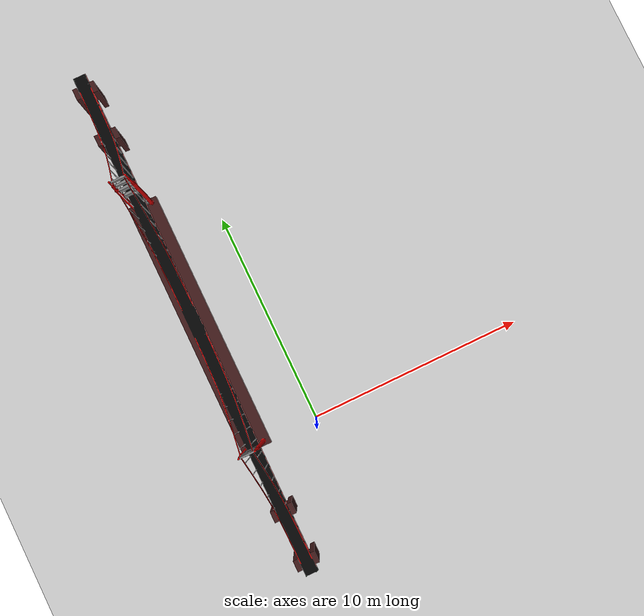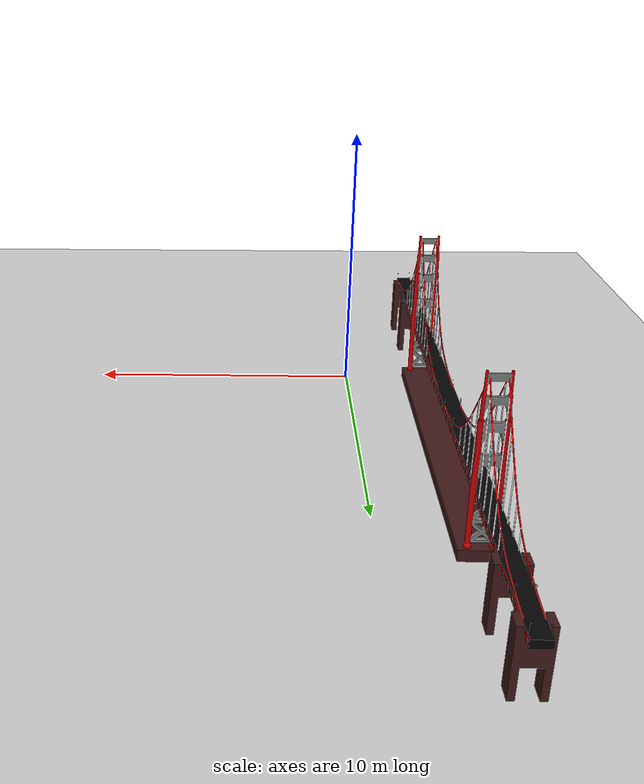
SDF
<sdf version="1.6">
 <world name="default">
  <model name="ground_concrete">
   <static>1</static>
   <link name="link">
    <collision name="collision">
     <geometry><plane><normal>0 0 1</normal><size>100 100</size></plane></geometry>
     <surface><friction><ode><mu>100</mu><mu2>50</mu2></ode></friction></surface>
    </collision>
    <visual name="visual">
     <cast_shadows>0</cast_shadows>
     <geometry><plane><normal>0 0 1</normal><size>100 100</size></plane></geometry>
     <material>
      <script>
       <uri>model://ground_concrete/materials/scripts</uri>
       <uri>model://ground_concrete/materials/textures/</uri>
       <name>MyGroundPlane/Image</name>
      </script>
     </material>
    </visual>
   </link>
   <pose>-0.004927 0.020491 0 0 -0 0</pose>
  </model>
  <light name="sun" type="directional">
   <cast_shadows>0</cast_shadows>
   <pose>0 0 10 0 -0 0</pose>
   <diffuse>0.8 0.8 0.8 1</diffuse>
   <specular>0.2 0.2 0.2 1</specular>
   <attenuation>
    <range>1000</range>
    <constant>0.9</constant>
    <linear>0.01</linear>
    <quadratic>0.001</quadratic>
   </attenuation>
   <direction>-0.5 0.1 -0.9</direction>
  </light>
  <plugin name="ros_interface_plugin" filename="librotors_gazebo_ros_interface_plugin.so"/>
  <spherical_coordinates>
   <surface_model>EARTH_WGS84</surface_model>
   <latitude_deg>47.3667</latitude_deg>
   <longitude_deg>8.55</longitude_deg>
   <elevation>500</elevation>
   <heading_deg>0</heading_deg>
  </spherical_coordinates>
  <physics name="default_physics" default="0" type="ode">
   <ode>
    <solver>
     <type>quick</type>
     <iters>1000</iters>
     <sor>1.3</sor>
     <use_dynamic_moi_rescaling>0</use_dynamic_moi_rescaling>
    </solver>
    <constraints>
     <cfm>0</cfm>
     <erp>0.2</erp>
     <contact_max_correcting_vel>100</contact_max_correcting_vel>
     <contact_surface_layer>0.001</contact_surface_layer>
    </constraints>
   </ode>
   <max_step_size>0.01</max_step_size>
   <real_time_factor>1</real_time_factor>
   <real_time_update_rate>100</real_time_update_rate>
  </physics>
  <gravity>0 0 -9.8</gravity>
  <magnetic_field>6e-06 2.3e-05 -4.2e-05</magnetic_field>
  <atmosphere type="adiabatic"/>
  <scene><ambient>0 0 0 1</ambient><background>0.7 0.7 0.7 1</background><shadows>0</shadows></scene>
  <audio><device>default</device></audio>
  <model name="suspension_bridge">
   <static>1</static>
   <pose>-2.9868 6.053 -0.220366 0.000105 -1.8e-05 -0.001016</pose>
   <link name="link">
    <inertial>
     <mass>200</mass>
     <inertia><ixx>400.2</ixx><ixy>0</ixy><ixz>0</ixz><iyy>400.8</iyy><iyz>0</iyz><izz>800.6</izz></inertia>
    </inertial>
    <visual name="visual">
     <geometry><mesh><uri>model://suspension_bridge/meshes/suspension_bridge.dae</uri></mesh></geometry>
    </visual>
    <collision name="collision">
     <geometry><mesh><uri>model://suspension_bridge/meshes/suspension_bridge.dae</uri></mesh></geometry>
    </collision>
   </link>
  </model>
  <light name="user_directional_light_1" type="directional">
   <pose>-3.34267 -3.00126 1 0 -0 0</pose>
   <diffuse>0.5 0.5 0.5 1</diffuse>
   <specular>0.1 0.1 0.1 1</specular>
   <direction>0.1 0.1 -0.9</direction>
   <attenuation>
    <range>20</range>
    <constant>0.5</constant>
    <linear>0.01</linear>
    <quadratic>0.001</quadratic>
   </attenuation>
   <cast_shadows>0</cast_shadows>
  </light>
 </world>
</sdf>
